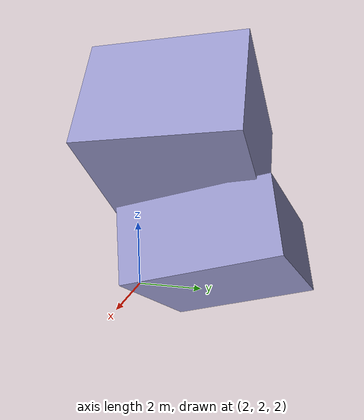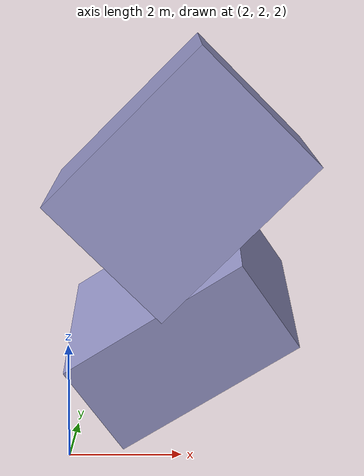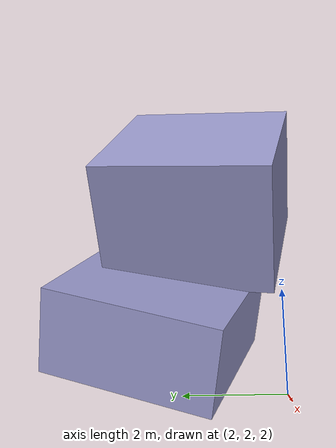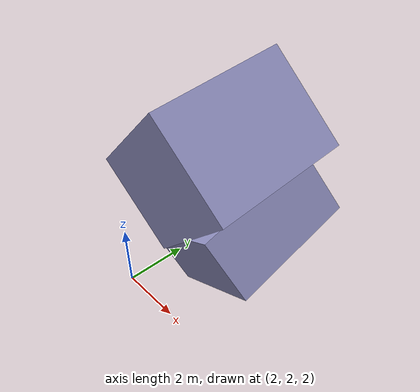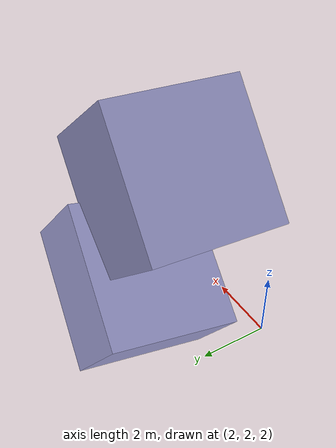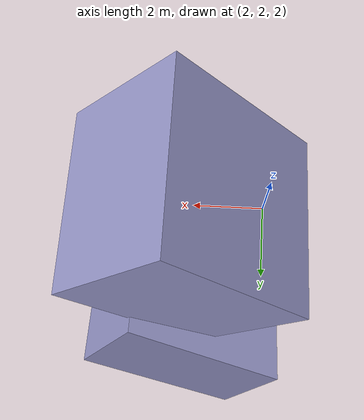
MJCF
<mujoco model="mass_model">
<worldbody>
<body name="module1" pos="4.0 5.0 4.0" quat="-0.37560324225004205 0.28560830922548747 0.533664007354015 0.701821077887711">
<geom type="box" size="1.0 2.0 2.0" mass="7.0" rgba="0.6 0.6 0.8 1"/>
</body>
<body name="module2" pos="4.0 4.0 7.0" quat="-0.2838706108808657 0.2566399923722925 0.6195837502325162 0.6853242787477215">
<geom type="box" size="1.5 2.0 2.0" mass="7.0" rgba="0.6 0.6 0.8 1"/>
</body>
</worldbody>
</mujoco>
